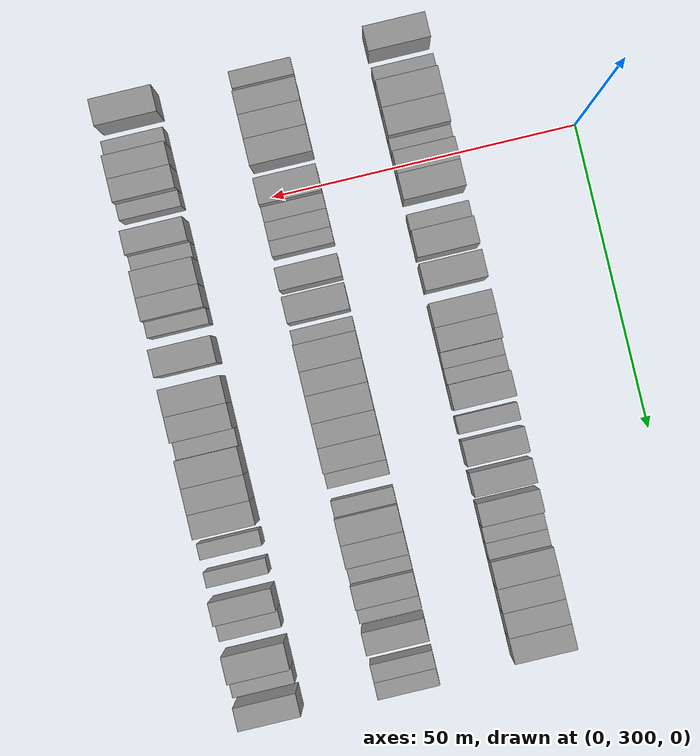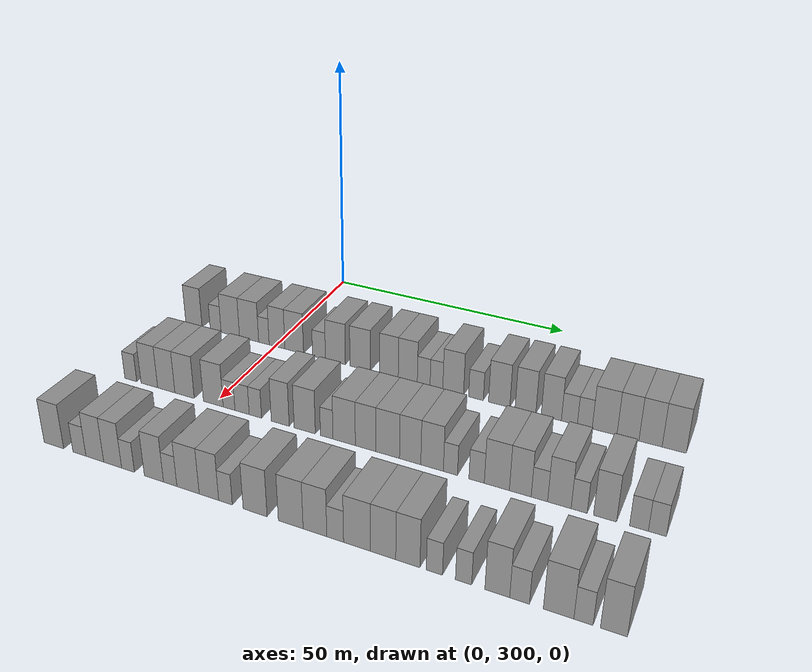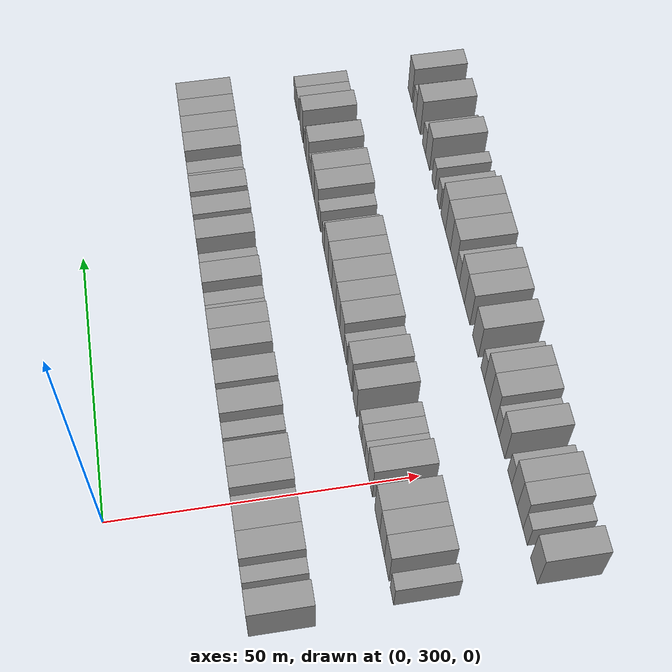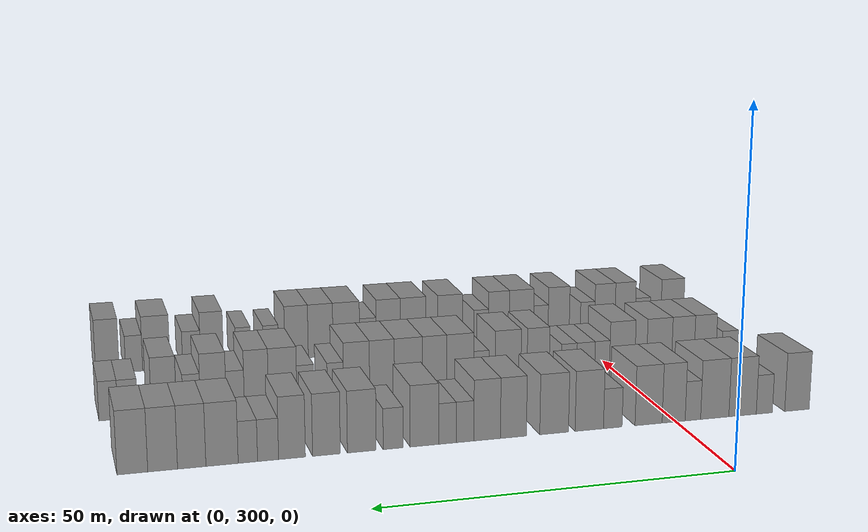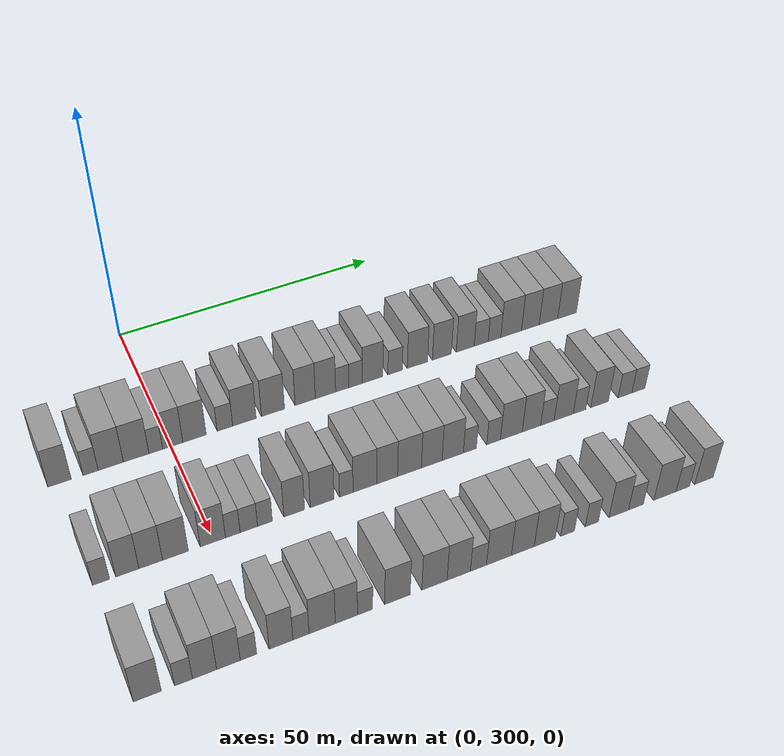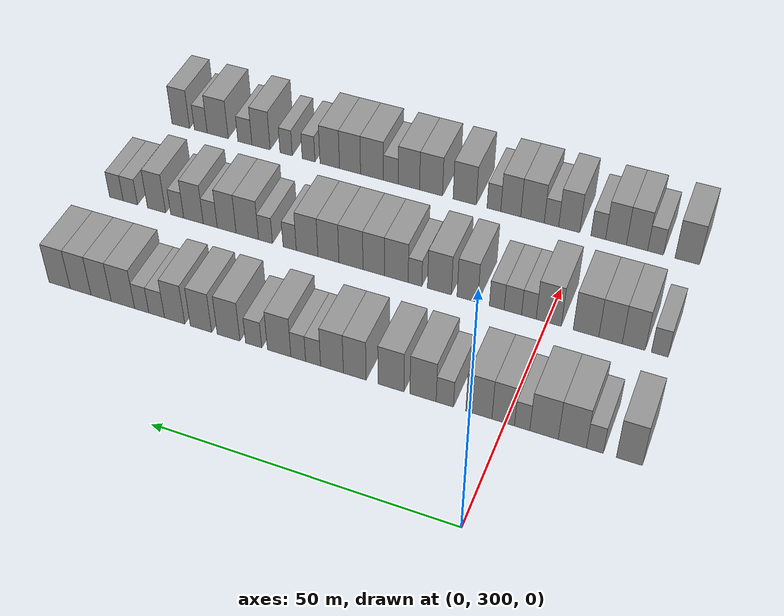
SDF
<sdf version="1.6">
 <world name="default">
  <model name="building_170">
   <static>1</static>
   <pose>25.0000 280.6387 0 0.000000 0.000000 0.000000</pose>
   <link name="link">
    <pose>0 0 4.50 0 0 0</pose>
    <collision name="collision"><geometry><box><size>10.0000 3.9963 9.0000</size></box></geometry></collision>
    <visual name="visual">
     <cast_shadows>0</cast_shadows>
     <geometry><box><size>10.0000 3.9963 9.0000</size></box></geometry>
     <material>
      <script>
       <uri>model://grey_wall/materials/scripts</uri>
       <uri>model://grey_wall/materials/textures</uri>
       <name>vrc/grey_wall</name>
      </script>
     </material>
    </visual>
   </link>
  </model>
  <model name="building_171">
   <static>1</static>
   <pose>25.0000 285.9402 0 0.000000 0.000000 0.000000</pose>
   <link name="link">
    <pose>0 0 3.00 0 0 0</pose>
    <collision name="collision"><geometry><box><size>10.0000 2.6067 6.0000</size></box></geometry></collision>
    <visual name="visual">
     <cast_shadows>0</cast_shadows>
     <geometry><box><size>10.0000 2.6067 6.0000</size></box></geometry>
     <material>
      <script>
       <uri>model://grey_wall/materials/scripts</uri>
       <uri>model://grey_wall/materials/textures</uri>
       <name>vrc/grey_wall</name>
      </script>
     </material>
    </visual>
   </link>
  </model>
  <model name="building_172">
   <static>1</static>
   <pose>25.0000 289.4367 0 0.000000 0.000000 0.000000</pose>
   <link name="link">
    <pose>0 0 4.50 0 0 0</pose>
    <collision name="collision"><geometry><box><size>10.0000 4.3864 9.0000</size></box></geometry></collision>
    <visual name="visual">
     <cast_shadows>0</cast_shadows>
     <geometry><box><size>10.0000 4.3864 9.0000</size></box></geometry>
     <material>
      <script>
       <uri>model://grey_wall/materials/scripts</uri>
       <uri>model://grey_wall/materials/textures</uri>
       <name>vrc/grey_wall</name>
      </script>
     </material>
    </visual>
   </link>
  </model>
  <model name="building_173">
   <static>1</static>
   <pose>25.0000 293.8768 0 0.000000 0.000000 0.000000</pose>
   <link name="link">
    <pose>0 0 4.50 0 0 0</pose>
    <collision name="collision"><geometry><box><size>10.0000 4.4937 9.0000</size></box></geometry></collision>
    <visual name="visual">
     <cast_shadows>0</cast_shadows>
     <geometry><box><size>10.0000 4.4937 9.0000</size></box></geometry>
     <material>
      <script>
       <uri>model://grey_wall/materials/scripts</uri>
       <uri>model://grey_wall/materials/textures</uri>
       <name>vrc/grey_wall</name>
      </script>
     </material>
    </visual>
   </link>
  </model>
  <model name="building_174">
   <static>1</static>
   <pose>25.0000 297.3408 0 0.000000 0.000000 0.000000</pose>
   <link name="link">
    <pose>0 0 3.00 0 0 0</pose>
    <collision name="collision"><geometry><box><size>10.0000 2.4344 6.0000</size></box></geometry></collision>
    <visual name="visual">
     <cast_shadows>0</cast_shadows>
     <geometry><box><size>10.0000 2.4344 6.0000</size></box></geometry>
     <material>
      <script>
       <uri>model://grey_wall/materials/scripts</uri>
       <uri>model://grey_wall/materials/textures</uri>
       <name>vrc/grey_wall</name>
      </script>
     </material>
    </visual>
   </link>
  </model>
  <model name="building_175">
   <static>1</static>
   <pose>25.0000 300.3612 0 0.000000 0.000000 0.000000</pose>
   <link name="link">
    <pose>0 0 4.50 0 0 0</pose>
    <collision name="collision"><geometry><box><size>10.0000 3.6065 9.0000</size></box></geometry></collision>
    <visual name="visual">
     <cast_shadows>0</cast_shadows>
     <geometry><box><size>10.0000 3.6065 9.0000</size></box></geometry>
     <material>
      <script>
       <uri>model://grey_wall/materials/scripts</uri>
       <uri>model://grey_wall/materials/textures</uri>
       <name>vrc/grey_wall</name>
      </script>
     </material>
    </visual>
   </link>
  </model>
  <model name="building_176">
   <static>1</static>
   <pose>25.0000 304.2720 0 0.000000 0.000000 0.000000</pose>
   <link name="link">
    <pose>0 0 4.50 0 0 0</pose>
    <collision name="collision"><geometry><box><size>10.0000 4.2150 9.0000</size></box></geometry></collision>
    <visual name="visual">
     <cast_shadows>0</cast_shadows>
     <geometry><box><size>10.0000 4.2150 9.0000</size></box></geometry>
     <material>
      <script>
       <uri>model://grey_wall/materials/scripts</uri>
       <uri>model://grey_wall/materials/textures</uri>
       <name>vrc/grey_wall</name>
      </script>
     </material>
    </visual>
   </link>
  </model>
  <model name="building_177">
   <static>1</static>
   <pose>25.0000 309.8075 0 0.000000 0.000000 0.000000</pose>
   <link name="link">
    <pose>0 0 3.00 0 0 0</pose>
    <collision name="collision"><geometry><box><size>10.0000 2.8558 6.0000</size></box></geometry></collision>
    <visual name="visual">
     <cast_shadows>0</cast_shadows>
     <geometry><box><size>10.0000 2.8558 6.0000</size></box></geometry>
     <material>
      <script>
       <uri>model://grey_wall/materials/scripts</uri>
       <uri>model://grey_wall/materials/textures</uri>
       <name>vrc/grey_wall</name>
      </script>
     </material>
    </visual>
   </link>
  </model>
  <model name="building_178">
   <static>1</static>
   <pose>25.0000 313.3999 0 0.000000 0.000000 0.000000</pose>
   <link name="link">
    <pose>0 0 4.50 0 0 0</pose>
    <collision name="collision"><geometry><box><size>10.0000 4.3290 9.0000</size></box></geometry></collision>
    <visual name="visual">
     <cast_shadows>0</cast_shadows>
     <geometry><box><size>10.0000 4.3290 9.0000</size></box></geometry>
     <material>
      <script>
       <uri>model://grey_wall/materials/scripts</uri>
       <uri>model://grey_wall/materials/textures</uri>
       <name>vrc/grey_wall</name>
      </script>
     </material>
    </visual>
   </link>
  </model>
  <model name="building_179">
   <static>1</static>
   <pose>25.0000 318.7264 0 0.000000 0.000000 0.000000</pose>
   <link name="link">
    <pose>0 0 4.50 0 0 0</pose>
    <collision name="collision"><geometry><box><size>10.0000 4.3240 9.0000</size></box></geometry></collision>
    <visual name="visual">
     <cast_shadows>0</cast_shadows>
     <geometry><box><size>10.0000 4.3240 9.0000</size></box></geometry>
     <material>
      <script>
       <uri>model://grey_wall/materials/scripts</uri>
       <uri>model://grey_wall/materials/textures</uri>
       <name>vrc/grey_wall</name>
      </script>
     </material>
    </visual>
   </link>
  </model>
  <model name="building_180">
   <static>1</static>
   <pose>25.0000 324.8200 0 0.000000 0.000000 0.000000</pose>
   <link name="link">
    <pose>0 0 4.50 0 0 0</pose>
    <collision name="collision"><geometry><box><size>10.0000 3.8633 9.0000</size></box></geometry></collision>
    <visual name="visual">
     <cast_shadows>0</cast_shadows>
     <geometry><box><size>10.0000 3.8633 9.0000</size></box></geometry>
     <material>
      <script>
       <uri>model://grey_wall/materials/scripts</uri>
       <uri>model://grey_wall/materials/textures</uri>
       <name>vrc/grey_wall</name>
      </script>
     </material>
    </visual>
   </link>
  </model>
  <model name="building_181">
   <static>1</static>
   <pose>25.0000 328.7062 0 0.000000 0.000000 0.000000</pose>
   <link name="link">
    <pose>0 0 4.50 0 0 0</pose>
    <collision name="collision"><geometry><box><size>10.0000 3.9090 9.0000</size></box></geometry></collision>
    <visual name="visual">
     <cast_shadows>0</cast_shadows>
     <geometry><box><size>10.0000 3.9090 9.0000</size></box></geometry>
     <material>
      <script>
       <uri>model://grey_wall/materials/scripts</uri>
       <uri>model://grey_wall/materials/textures</uri>
       <name>vrc/grey_wall</name>
      </script>
     </material>
    </visual>
   </link>
  </model>
  <model name="building_182">
   <static>1</static>
   <pose>25.0000 331.9572 0 0.000000 0.000000 0.000000</pose>
   <link name="link">
    <pose>0 0 3.00 0 0 0</pose>
    <collision name="collision"><geometry><box><size>10.0000 2.5931 6.0000</size></box></geometry></collision>
    <visual name="visual">
     <cast_shadows>0</cast_shadows>
     <geometry><box><size>10.0000 2.5931 6.0000</size></box></geometry>
     <material>
      <script>
       <uri>model://grey_wall/materials/scripts</uri>
       <uri>model://grey_wall/materials/textures</uri>
       <name>vrc/grey_wall</name>
      </script>
     </material>
    </visual>
   </link>
  </model>
  <model name="building_183">
   <static>1</static>
   <pose>25.0000 334.5314 0 0.000000 0.000000 0.000000</pose>
   <link name="link">
    <pose>0 0 3.00 0 0 0</pose>
    <collision name="collision"><geometry><box><size>10.0000 2.5552 6.0000</size></box></geometry></collision>
    <visual name="visual">
     <cast_shadows>0</cast_shadows>
     <geometry><box><size>10.0000 2.5552 6.0000</size></box></geometry>
     <material>
      <script>
       <uri>model://grey_wall/materials/scripts</uri>
       <uri>model://grey_wall/materials/textures</uri>
       <name>vrc/grey_wall</name>
      </script>
     </material>
    </visual>
   </link>
  </model>
  <model name="building_184">
   <static>1</static>
   <pose>25.0000 337.8627 0 0.000000 0.000000 0.000000</pose>
   <link name="link">
    <pose>0 0 4.50 0 0 0</pose>
    <collision name="collision"><geometry><box><size>10.0000 4.1073 9.0000</size></box></geometry></collision>
    <visual name="visual">
     <cast_shadows>0</cast_shadows>
     <geometry><box><size>10.0000 4.1073 9.0000</size></box></geometry>
     <material>
      <script>
       <uri>model://grey_wall/materials/scripts</uri>
       <uri>model://grey_wall/materials/textures</uri>
       <name>vrc/grey_wall</name>
      </script>
     </material>
    </visual>
   </link>
  </model>
  <model name="building_185">
   <static>1</static>
   <pose>25.0000 342.3485 0 0.000000 0.000000 0.000000</pose>
   <link name="link">
    <pose>0 0 3.00 0 0 0</pose>
    <collision name="collision"><geometry><box><size>10.0000 2.8642 6.0000</size></box></geometry></collision>
    <visual name="visual">
     <cast_shadows>0</cast_shadows>
     <geometry><box><size>10.0000 2.8642 6.0000</size></box></geometry>
     <material>
      <script>
       <uri>model://grey_wall/materials/scripts</uri>
       <uri>model://grey_wall/materials/textures</uri>
       <name>vrc/grey_wall</name>
      </script>
     </material>
    </visual>
   </link>
  </model>
  <model name="building_186">
   <static>1</static>
   <pose>25.0000 346.8146 0 0.000000 0.000000 0.000000</pose>
   <link name="link">
    <pose>0 0 4.50 0 0 0</pose>
    <collision name="collision"><geometry><box><size>10.0000 4.0682 9.0000</size></box></geometry></collision>
    <visual name="visual">
     <cast_shadows>0</cast_shadows>
     <geometry><box><size>10.0000 4.0682 9.0000</size></box></geometry>
     <material>
      <script>
       <uri>model://grey_wall/materials/scripts</uri>
       <uri>model://grey_wall/materials/textures</uri>
       <name>vrc/grey_wall</name>
      </script>
     </material>
    </visual>
   </link>
  </model>
  <model name="building_187">
   <static>1</static>
   <pose>25.0000 351.7886 0 0.000000 0.000000 0.000000</pose>
   <link name="link">
    <pose>0 0 4.50 0 0 0</pose>
    <collision name="collision"><geometry><box><size>10.0000 3.8797 9.0000</size></box></geometry></collision>
    <visual name="visual">
     <cast_shadows>0</cast_shadows>
     <geometry><box><size>10.0000 3.8797 9.0000</size></box></geometry>
     <material>
      <script>
       <uri>model://grey_wall/materials/scripts</uri>
       <uri>model://grey_wall/materials/textures</uri>
       <name>vrc/grey_wall</name>
      </script>
     </material>
    </visual>
   </link>
  </model>
  <model name="building_188">
   <static>1</static>
   <pose>25.0000 356.5841 0 0.000000 0.000000 0.000000</pose>
   <link name="link">
    <pose>0 0 4.50 0 0 0</pose>
    <collision name="collision"><geometry><box><size>10.0000 3.7113 9.0000</size></box></geometry></collision>
    <visual name="visual">
     <cast_shadows>0</cast_shadows>
     <geometry><box><size>10.0000 3.7113 9.0000</size></box></geometry>
     <material>
      <script>
       <uri>model://grey_wall/materials/scripts</uri>
       <uri>model://grey_wall/materials/textures</uri>
       <name>vrc/grey_wall</name>
      </script>
     </material>
    </visual>
   </link>
  </model>
  <model name="building_189">
   <static>1</static>
   <pose>25.0000 359.8852 0 0.000000 0.000000 0.000000</pose>
   <link name="link">
    <pose>0 0 3.00 0 0 0</pose>
    <collision name="collision"><geometry><box><size>10.0000 2.8909 6.0000</size></box></geometry></collision>
    <visual name="visual">
     <cast_shadows>0</cast_shadows>
     <geometry><box><size>10.0000 2.8909 6.0000</size></box></geometry>
     <material>
      <script>
       <uri>model://grey_wall/materials/scripts</uri>
       <uri>model://grey_wall/materials/textures</uri>
       <name>vrc/grey_wall</name>
      </script>
     </material>
    </visual>
   </link>
  </model>
  <model name="building_190">
   <static>1</static>
   <pose>25.0000 362.6562 0 0.000000 0.000000 0.000000</pose>
   <link name="link">
    <pose>0 0 3.00 0 0 0</pose>
    <collision name="collision"><geometry><box><size>10.0000 2.6512 6.0000</size></box></geometry></collision>
    <visual name="visual">
     <cast_shadows>0</cast_shadows>
     <geometry><box><size>10.0000 2.6512 6.0000</size></box></geometry>
     <material>
      <script>
       <uri>model://grey_wall/materials/scripts</uri>
       <uri>model://grey_wall/materials/textures</uri>
       <name>vrc/grey_wall</name>
      </script>
     </material>
    </visual>
   </link>
  </model>
  <model name="building_191">
   <static>1</static>
   <pose>25.0000 366.1679 0 0.000000 0.000000 0.000000</pose>
   <link name="link">
    <pose>0 0 4.50 0 0 0</pose>
    <collision name="collision"><geometry><box><size>10.0000 4.3721 9.0000</size></box></geometry></collision>
    <visual name="visual">
     <cast_shadows>0</cast_shadows>
     <geometry><box><size>10.0000 4.3721 9.0000</size></box></geometry>
     <material>
      <script>
       <uri>model://grey_wall/materials/scripts</uri>
       <uri>model://grey_wall/materials/textures</uri>
       <name>vrc/grey_wall</name>
      </script>
     </material>
    </visual>
   </link>
  </model>
  <model name="building_192">
   <static>1</static>
   <pose>25.0000 370.2588 0 0.000000 0.000000 0.000000</pose>
   <link name="link">
    <pose>0 0 4.50 0 0 0</pose>
    <collision name="collision"><geometry><box><size>10.0000 3.8097 9.0000</size></box></geometry></collision>
    <visual name="visual">
     <cast_shadows>0</cast_shadows>
     <geometry><box><size>10.0000 3.8097 9.0000</size></box></geometry>
     <material>
      <script>
       <uri>model://grey_wall/materials/scripts</uri>
       <uri>model://grey_wall/materials/textures</uri>
       <name>vrc/grey_wall</name>
      </script>
     </material>
    </visual>
   </link>
  </model>
  <model name="building_193">
   <static>1</static>
   <pose>25.0000 374.1449 0 0.000000 0.000000 0.000000</pose>
   <link name="link">
    <pose>0 0 4.50 0 0 0</pose>
    <collision name="collision"><geometry><box><size>10.0000 3.9625 9.0000</size></box></geometry></collision>
    <visual name="visual">
     <cast_shadows>0</cast_shadows>
     <geometry><box><size>10.0000 3.9625 9.0000</size></box></geometry>
     <material>
      <script>
       <uri>model://grey_wall/materials/scripts</uri>
       <uri>model://grey_wall/materials/textures</uri>
       <name>vrc/grey_wall</name>
      </script>
     </material>
    </visual>
   </link>
  </model>
  <model name="building_194">
   <static>1</static>
   <pose>25.0000 378.1609 0 0.000000 0.000000 0.000000</pose>
   <link name="link">
    <pose>0 0 4.50 0 0 0</pose>
    <collision name="collision"><geometry><box><size>10.0000 4.0697 9.0000</size></box></geometry></collision>
    <visual name="visual">
     <cast_shadows>0</cast_shadows>
     <geometry><box><size>10.0000 4.0697 9.0000</size></box></geometry>
     <material>
      <script>
       <uri>model://grey_wall/materials/scripts</uri>
       <uri>model://grey_wall/materials/textures</uri>
       <name>vrc/grey_wall</name>
      </script>
     </material>
    </visual>
   </link>
  </model>
  <model name="building_354">
   <static>1</static>
   <pose>47.0000 281.3577 0 0.000000 0.000000 0.000000</pose>
   <link name="link">
    <pose>0 0 3.00 0 0 0</pose>
    <collision name="collision"><geometry><box><size>10.0000 2.7425 6.0000</size></box></geometry></collision>
    <visual name="visual">
     <cast_shadows>0</cast_shadows>
     <geometry><box><size>10.0000 2.7425 6.0000</size></box></geometry>
     <material>
      <script>
       <uri>model://grey_wall/materials/scripts</uri>
       <uri>model://grey_wall/materials/textures</uri>
       <name>vrc/grey_wall</name>
      </script>
     </material>
    </visual>
   </link>
  </model>
  <model name="building_355">
   <static>1</static>
   <pose>47.0000 285.6176 0 0.000000 0.000000 0.000000</pose>
   <link name="link">
    <pose>0 0 4.50 0 0 0</pose>
    <collision name="collision"><geometry><box><size>10.0000 3.7772 9.0000</size></box></geometry></collision>
    <visual name="visual">
     <cast_shadows>0</cast_shadows>
     <geometry><box><size>10.0000 3.7772 9.0000</size></box></geometry>
     <material>
      <script>
       <uri>model://grey_wall/materials/scripts</uri>
       <uri>model://grey_wall/materials/textures</uri>
       <name>vrc/grey_wall</name>
      </script>
     </material>
    </visual>
   </link>
  </model>
  <model name="building_356">
   <static>1</static>
   <pose>47.0000 289.4388 0 0.000000 0.000000 0.000000</pose>
   <link name="link">
    <pose>0 0 4.50 0 0 0</pose>
    <collision name="collision"><geometry><box><size>10.0000 3.8653 9.0000</size></box></geometry></collision>
    <visual name="visual">
     <cast_shadows>0</cast_shadows>
     <geometry><box><size>10.0000 3.8653 9.0000</size></box></geometry>
     <material>
      <script>
       <uri>model://grey_wall/materials/scripts</uri>
       <uri>model://grey_wall/materials/textures</uri>
       <name>vrc/grey_wall</name>
      </script>
     </material>
    </visual>
   </link>
  </model>
  <model name="building_357">
   <static>1</static>
   <pose>47.0000 293.5072 0 0.000000 0.000000 0.000000</pose>
   <link name="link">
    <pose>0 0 4.50 0 0 0</pose>
    <collision name="collision"><geometry><box><size>10.0000 4.2714 9.0000</size></box></geometry></collision>
    <visual name="visual">
     <cast_shadows>0</cast_shadows>
     <geometry><box><size>10.0000 4.2714 9.0000</size></box></geometry>
     <material>
      <script>
       <uri>model://grey_wall/materials/scripts</uri>
       <uri>model://grey_wall/materials/textures</uri>
       <name>vrc/grey_wall</name>
      </script>
     </material>
    </visual>
   </link>
  </model>
  <model name="building_358">
   <static>1</static>
   <pose>47.0000 299.7740 0 0.000000 0.000000 0.000000</pose>
   <link name="link">
    <pose>0 0 4.50 0 0 0</pose>
    <collision name="collision"><geometry><box><size>10.0000 4.2620 9.0000</size></box></geometry></collision>
    <visual name="visual">
     <cast_shadows>0</cast_shadows>
     <geometry><box><size>10.0000 4.2620 9.0000</size></box></geometry>
     <material>
      <script>
       <uri>model://grey_wall/materials/scripts</uri>
       <uri>model://grey_wall/materials/textures</uri>
       <name>vrc/grey_wall</name>
      </script>
     </material>
    </visual>
   </link>
  </model>
  <model name="building_359">
   <static>1</static>
   <pose>47.0000 303.1532 0 0.000000 0.000000 0.000000</pose>
   <link name="link">
    <pose>0 0 3.00 0 0 0</pose>
    <collision name="collision"><geometry><box><size>10.0000 2.4964 6.0000</size></box></geometry></collision>
    <visual name="visual">
     <cast_shadows>0</cast_shadows>
     <geometry><box><size>10.0000 2.4964 6.0000</size></box></geometry>
     <material>
      <script>
       <uri>model://grey_wall/materials/scripts</uri>
       <uri>model://grey_wall/materials/textures</uri>
       <name>vrc/grey_wall</name>
      </script>
     </material>
    </visual>
   </link>
  </model>
  <model name="building_360">
   <static>1</static>
   <pose>47.0000 305.8969 0 0.000000 0.000000 0.000000</pose>
   <link name="link">
    <pose>0 0 3.00 0 0 0</pose>
    <collision name="collision"><geometry><box><size>10.0000 2.9911 6.0000</size></box></geometry></collision>
    <visual name="visual">
     <cast_shadows>0</cast_shadows>
     <geometry><box><size>10.0000 2.9911 6.0000</size></box></geometry>
     <material>
      <script>
       <uri>model://grey_wall/materials/scripts</uri>
       <uri>model://grey_wall/materials/textures</uri>
       <name>vrc/grey_wall</name>
      </script>
     </material>
    </visual>
   </link>
  </model>
  <model name="building_361">
   <static>1</static>
   <pose>47.0000 308.6741 0 0.000000 0.000000 0.000000</pose>
   <link name="link">
    <pose>0 0 3.00 0 0 0</pose>
    <collision name="collision"><geometry><box><size>10.0000 2.5633 6.0000</size></box></geometry></collision>
    <visual name="visual">
     <cast_shadows>0</cast_shadows>
     <geometry><box><size>10.0000 2.5633 6.0000</size></box></geometry>
     <material>
      <script>
       <uri>model://grey_wall/materials/scripts</uri>
       <uri>model://grey_wall/materials/textures</uri>
       <name>vrc/grey_wall</name>
      </script>
     </material>
    </visual>
   </link>
  </model>
  <model name="building_362">
   <static>1</static>
   <pose>47.0000 313.7759 0 0.000000 0.000000 0.000000</pose>
   <link name="link">
    <pose>0 0 4.50 0 0 0</pose>
    <collision name="collision"><geometry><box><size>10.0000 3.6403 9.0000</size></box></geometry></collision>
    <visual name="visual">
     <cast_shadows>0</cast_shadows>
     <geometry><box><size>10.0000 3.6403 9.0000</size></box></geometry>
     <material>
      <script>
       <uri>model://grey_wall/materials/scripts</uri>
       <uri>model://grey_wall/materials/textures</uri>
       <name>vrc/grey_wall</name>
      </script>
     </material>
    </visual>
   </link>
  </model>
  <model name="building_363">
   <static>1</static>
   <pose>47.0000 318.7058 0 0.000000 0.000000 0.000000</pose>
   <link name="link">
    <pose>0 0 4.50 0 0 0</pose>
    <collision name="collision"><geometry><box><size>10.0000 4.2194 9.0000</size></box></geometry></collision>
    <visual name="visual">
     <cast_shadows>0</cast_shadows>
     <geometry><box><size>10.0000 4.2194 9.0000</size></box></geometry>
     <material>
      <script>
       <uri>model://grey_wall/materials/scripts</uri>
       <uri>model://grey_wall/materials/textures</uri>
       <name>vrc/grey_wall</name>
      </script>
     </material>
    </visual>
   </link>
  </model>
  <model name="building_364">
   <static>1</static>
   <pose>47.0000 323.0400 0 0.000000 0.000000 0.000000</pose>
   <link name="link">
    <pose>0 0 3.00 0 0 0</pose>
    <collision name="collision"><geometry><box><size>10.0000 2.4490 6.0000</size></box></geometry></collision>
    <visual name="visual">
     <cast_shadows>0</cast_shadows>
     <geometry><box><size>10.0000 2.4490 6.0000</size></box></geometry>
     <material>
      <script>
       <uri>model://grey_wall/materials/scripts</uri>
       <uri>model://grey_wall/materials/textures</uri>
       <name>vrc/grey_wall</name>
      </script>
     </material>
    </visual>
   </link>
  </model>
  <model name="building_365">
   <static>1</static>
   <pose>47.0000 326.4119 0 0.000000 0.000000 0.000000</pose>
   <link name="link">
    <pose>0 0 4.50 0 0 0</pose>
    <collision name="collision"><geometry><box><size>10.0000 4.2950 9.0000</size></box></geometry></collision>
    <visual name="visual">
     <cast_shadows>0</cast_shadows>
     <geometry><box><size>10.0000 4.2950 9.0000</size></box></geometry>
     <material>
      <script>
       <uri>model://grey_wall/materials/scripts</uri>
       <uri>model://grey_wall/materials/textures</uri>
       <name>vrc/grey_wall</name>
      </script>
     </material>
    </visual>
   </link>
  </model>
  <model name="building_366">
   <static>1</static>
   <pose>47.0000 330.4872 0 0.000000 0.000000 0.000000</pose>
   <link name="link">
    <pose>0 0 4.50 0 0 0</pose>
    <collision name="collision"><geometry><box><size>10.0000 3.8557 9.0000</size></box></geometry></collision>
    <visual name="visual">
     <cast_shadows>0</cast_shadows>
     <geometry><box><size>10.0000 3.8557 9.0000</size></box></geometry>
     <material>
      <script>
       <uri>model://grey_wall/materials/scripts</uri>
       <uri>model://grey_wall/materials/textures</uri>
       <name>vrc/grey_wall</name>
      </script>
     </material>
    </visual>
   </link>
  </model>
  <model name="building_367">
   <static>1</static>
   <pose>47.0000 334.6241 0 0.000000 0.000000 0.000000</pose>
   <link name="link">
    <pose>0 0 4.50 0 0 0</pose>
    <collision name="collision"><geometry><box><size>10.0000 4.4180 9.0000</size></box></geometry></collision>
    <visual name="visual">
     <cast_shadows>0</cast_shadows>
     <geometry><box><size>10.0000 4.4180 9.0000</size></box></geometry>
     <material>
      <script>
       <uri>model://grey_wall/materials/scripts</uri>
       <uri>model://grey_wall/materials/textures</uri>
       <name>vrc/grey_wall</name>
      </script>
     </material>
    </visual>
   </link>
  </model>
  <model name="building_368">
   <static>1</static>
   <pose>47.0000 338.7749 0 0.000000 0.000000 0.000000</pose>
   <link name="link">
    <pose>0 0 4.50 0 0 0</pose>
    <collision name="collision"><geometry><box><size>10.0000 3.8836 9.0000</size></box></geometry></collision>
    <visual name="visual">
     <cast_shadows>0</cast_shadows>
     <geometry><box><size>10.0000 3.8836 9.0000</size></box></geometry>
     <material>
      <script>
       <uri>model://grey_wall/materials/scripts</uri>
       <uri>model://grey_wall/materials/textures</uri>
       <name>vrc/grey_wall</name>
      </script>
     </material>
    </visual>
   </link>
  </model>
  <model name="building_369">
   <static>1</static>
   <pose>47.0000 342.7407 0 0.000000 0.000000 0.000000</pose>
   <link name="link">
    <pose>0 0 4.50 0 0 0</pose>
    <collision name="collision"><geometry><box><size>10.0000 4.0480 9.0000</size></box></geometry></collision>
    <visual name="visual">
     <cast_shadows>0</cast_shadows>
     <geometry><box><size>10.0000 4.0480 9.0000</size></box></geometry>
     <material>
      <script>
       <uri>model://grey_wall/materials/scripts</uri>
       <uri>model://grey_wall/materials/textures</uri>
       <name>vrc/grey_wall</name>
      </script>
     </material>
    </visual>
   </link>
  </model>
  <model name="building_370">
   <static>1</static>
   <pose>47.0000 346.0104 0 0.000000 0.000000 0.000000</pose>
   <link name="link">
    <pose>0 0 3.00 0 0 0</pose>
    <collision name="collision"><geometry><box><size>10.0000 2.4915 6.0000</size></box></geometry></collision>
    <visual name="visual">
     <cast_shadows>0</cast_shadows>
     <geometry><box><size>10.0000 2.4915 6.0000</size></box></geometry>
     <material>
      <script>
       <uri>model://grey_wall/materials/scripts</uri>
       <uri>model://grey_wall/materials/textures</uri>
       <name>vrc/grey_wall</name>
      </script>
     </material>
    </visual>
   </link>
  </model>
  <model name="building_371">
   <static>1</static>
   <pose>47.0000 350.5858 0 0.000000 0.000000 0.000000</pose>
   <link name="link">
    <pose>0 0 3.00 0 0 0</pose>
    <collision name="collision"><geometry><box><size>10.0000 2.6592 6.0000</size></box></geometry></collision>
    <visual name="visual">
     <cast_shadows>0</cast_shadows>
     <geometry><box><size>10.0000 2.6592 6.0000</size></box></geometry>
     <material>
      <script>
       <uri>model://grey_wall/materials/scripts</uri>
       <uri>model://grey_wall/materials/textures</uri>
       <name>vrc/grey_wall</name>
      </script>
     </material>
    </visual>
   </link>
  </model>
  <model name="building_372">
   <static>1</static>
   <pose>47.0000 354.0546 0 0.000000 0.000000 0.000000</pose>
   <link name="link">
    <pose>0 0 4.50 0 0 0</pose>
    <collision name="collision"><geometry><box><size>10.0000 4.2785 9.0000</size></box></geometry></collision>
    <visual name="visual">
     <cast_shadows>0</cast_shadows>
     <geometry><box><size>10.0000 4.2785 9.0000</size></box></geometry>
     <material>
      <script>
       <uri>model://grey_wall/materials/scripts</uri>
       <uri>model://grey_wall/materials/textures</uri>
       <name>vrc/grey_wall</name>
      </script>
     </material>
    </visual>
   </link>
  </model>
  <model name="building_373">
   <static>1</static>
   <pose>47.0000 358.0179 0 0.000000 0.000000 0.000000</pose>
   <link name="link">
    <pose>0 0 4.50 0 0 0</pose>
    <collision name="collision"><geometry><box><size>10.0000 3.6482 9.0000</size></box></geometry></collision>
    <visual name="visual">
     <cast_shadows>0</cast_shadows>
     <geometry><box><size>10.0000 3.6482 9.0000</size></box></geometry>
     <material>
      <script>
       <uri>model://grey_wall/materials/scripts</uri>
       <uri>model://grey_wall/materials/textures</uri>
       <name>vrc/grey_wall</name>
      </script>
     </material>
    </visual>
   </link>
  </model>
  <model name="building_374">
   <static>1</static>
   <pose>47.0000 361.1964 0 0.000000 0.000000 0.000000</pose>
   <link name="link">
    <pose>0 0 3.00 0 0 0</pose>
    <collision name="collision"><geometry><box><size>10.0000 2.7087 6.0000</size></box></geometry></collision>
    <visual name="visual">
     <cast_shadows>0</cast_shadows>
     <geometry><box><size>10.0000 2.7087 6.0000</size></box></geometry>
     <material>
      <script>
       <uri>model://grey_wall/materials/scripts</uri>
       <uri>model://grey_wall/materials/textures</uri>
       <name>vrc/grey_wall</name>
      </script>
     </material>
    </visual>
   </link>
  </model>
  <model name="building_375">
   <static>1</static>
   <pose>47.0000 364.4617 0 0.000000 0.000000 0.000000</pose>
   <link name="link">
    <pose>0 0 4.50 0 0 0</pose>
    <collision name="collision"><geometry><box><size>10.0000 3.8219 9.0000</size></box></geometry></collision>
    <visual name="visual">
     <cast_shadows>0</cast_shadows>
     <geometry><box><size>10.0000 3.8219 9.0000</size></box></geometry>
     <material>
      <script>
       <uri>model://grey_wall/materials/scripts</uri>
       <uri>model://grey_wall/materials/textures</uri>
       <name>vrc/grey_wall</name>
      </script>
     </material>
    </visual>
   </link>
  </model>
  <model name="building_376">
   <static>1</static>
   <pose>47.0000 367.6561 0 0.000000 0.000000 0.000000</pose>
   <link name="link">
    <pose>0 0 3.00 0 0 0</pose>
    <collision name="collision"><geometry><box><size>10.0000 2.5669 6.0000</size></box></geometry></collision>
    <visual name="visual">
     <cast_shadows>0</cast_shadows>
     <geometry><box><size>10.0000 2.5669 6.0000</size></box></geometry>
     <material>
      <script>
       <uri>model://grey_wall/materials/scripts</uri>
       <uri>model://grey_wall/materials/textures</uri>
       <name>vrc/grey_wall</name>
      </script>
     </material>
    </visual>
   </link>
  </model>
  <model name="building_377">
   <static>1</static>
   <pose>47.0000 371.7515 0 0.000000 0.000000 0.000000</pose>
   <link name="link">
    <pose>0 0 4.50 0 0 0</pose>
    <collision name="collision"><geometry><box><size>10.0000 3.6238 9.0000</size></box></geometry></collision>
    <visual name="visual">
     <cast_shadows>0</cast_shadows>
     <geometry><box><size>10.0000 3.6238 9.0000</size></box></geometry>
     <material>
      <script>
       <uri>model://grey_wall/materials/scripts</uri>
       <uri>model://grey_wall/materials/textures</uri>
       <name>vrc/grey_wall</name>
      </script>
     </material>
    </visual>
   </link>
  </model>
  <model name="building_378">
   <static>1</static>
   <pose>47.0000 377.0047 0 0.000000 0.000000 0.000000</pose>
   <link name="link">
    <pose>0 0 3.00 0 0 0</pose>
    <collision name="collision"><geometry><box><size>10.0000 2.8826 6.0000</size></box></geometry></collision>
    <visual name="visual">
     <cast_shadows>0</cast_shadows>
     <geometry><box><size>10.0000 2.8826 6.0000</size></box></geometry>
     <material>
      <script>
       <uri>model://grey_wall/materials/scripts</uri>
       <uri>model://grey_wall/materials/textures</uri>
       <name>vrc/grey_wall</name>
      </script>
     </material>
    </visual>
   </link>
  </model>
  <model name="building_379">
   <static>1</static>
   <pose>47.0000 379.8093 0 0.000000 0.000000 0.000000</pose>
   <link name="link">
    <pose>0 0 3.00 0 0 0</pose>
    <collision name="collision"><geometry><box><size>10.0000 2.7267 6.0000</size></box></geometry></collision>
    <visual name="visual">
     <cast_shadows>0</cast_shadows>
     <geometry><box><size>10.0000 2.7267 6.0000</size></box></geometry>
     <material>
      <script>
       <uri>model://grey_wall/materials/scripts</uri>
       <uri>model://grey_wall/materials/textures</uri>
       <name>vrc/grey_wall</name>
      </script>
     </material>
    </visual>
   </link>
  </model>
  <model name="building_549">
   <static>1</static>
   <pose>69.0000 281.9025 0 0.000000 0.000000 0.000000</pose>
   <link name="link">
    <pose>0 0 4.50 0 0 0</pose>
    <collision name="collision"><geometry><box><size>10.0000 4.2386 9.0000</size></box></geometry></collision>
    <visual name="visual">
     <cast_shadows>0</cast_shadows>
     <geometry><box><size>10.0000 4.2386 9.0000</size></box></geometry>
     <material>
      <script>
       <uri>model://grey_wall/materials/scripts</uri>
       <uri>model://grey_wall/materials/textures</uri>
       <name>vrc/grey_wall</name>
      </script>
     </material>
    </visual>
   </link>
  </model>
  <model name="building_550">
   <static>1</static>
   <pose>69.0000 287.4011 0 0.000000 0.000000 0.000000</pose>
   <link name="link">
    <pose>0 0 3.00 0 0 0</pose>
    <collision name="collision"><geometry><box><size>10.0000 2.7585 6.0000</size></box></geometry></collision>
    <visual name="visual">
     <cast_shadows>0</cast_shadows>
     <geometry><box><size>10.0000 2.7585 6.0000</size></box></geometry>
     <material>
      <script>
       <uri>model://grey_wall/materials/scripts</uri>
       <uri>model://grey_wall/materials/textures</uri>
       <name>vrc/grey_wall</name>
      </script>
     </material>
    </visual>
   </link>
  </model>
  <model name="building_551">
   <static>1</static>
   <pose>69.0000 290.6432 0 0.000000 0.000000 0.000000</pose>
   <link name="link">
    <pose>0 0 4.50 0 0 0</pose>
    <collision name="collision"><geometry><box><size>10.0000 3.7257 9.0000</size></box></geometry></collision>
    <visual name="visual">
     <cast_shadows>0</cast_shadows>
     <geometry><box><size>10.0000 3.7257 9.0000</size></box></geometry>
     <material>
      <script>
       <uri>model://grey_wall/materials/scripts</uri>
       <uri>model://grey_wall/materials/textures</uri>
       <name>vrc/grey_wall</name>
      </script>
     </material>
    </visual>
   </link>
  </model>
  <model name="building_552">
   <static>1</static>
   <pose>69.0000 294.3589 0 0.000000 0.000000 0.000000</pose>
   <link name="link">
    <pose>0 0 4.50 0 0 0</pose>
    <collision name="collision"><geometry><box><size>10.0000 3.7056 9.0000</size></box></geometry></collision>
    <visual name="visual">
     <cast_shadows>0</cast_shadows>
     <geometry><box><size>10.0000 3.7056 9.0000</size></box></geometry>
     <material>
      <script>
       <uri>model://grey_wall/materials/scripts</uri>
       <uri>model://grey_wall/materials/textures</uri>
       <name>vrc/grey_wall</name>
      </script>
     </material>
    </visual>
   </link>
  </model>
  <model name="building_553">
   <static>1</static>
   <pose>69.0000 297.5087 0 0.000000 0.000000 0.000000</pose>
   <link name="link">
    <pose>0 0 3.00 0 0 0</pose>
    <collision name="collision"><geometry><box><size>10.0000 2.5940 6.0000</size></box></geometry></collision>
    <visual name="visual">
     <cast_shadows>0</cast_shadows>
     <geometry><box><size>10.0000 2.5940 6.0000</size></box></geometry>
     <material>
      <script>
       <uri>model://grey_wall/materials/scripts</uri>
       <uri>model://grey_wall/materials/textures</uri>
       <name>vrc/grey_wall</name>
      </script>
     </material>
    </visual>
   </link>
  </model>
  <model name="building_554">
   <static>1</static>
   <pose>69.0000 302.7096 0 0.000000 0.000000 0.000000</pose>
   <link name="link">
    <pose>0 0 4.50 0 0 0</pose>
    <collision name="collision"><geometry><box><size>10.0000 3.8078 9.0000</size></box></geometry></collision>
    <visual name="visual">
     <cast_shadows>0</cast_shadows>
     <geometry><box><size>10.0000 3.8078 9.0000</size></box></geometry>
     <material>
      <script>
       <uri>model://grey_wall/materials/scripts</uri>
       <uri>model://grey_wall/materials/textures</uri>
       <name>vrc/grey_wall</name>
      </script>
     </material>
    </visual>
   </link>
  </model>
  <model name="building_555">
   <static>1</static>
   <pose>69.0000 305.9192 0 0.000000 0.000000 0.000000</pose>
   <link name="link">
    <pose>0 0 3.00 0 0 0</pose>
    <collision name="collision"><geometry><box><size>10.0000 2.6115 6.0000</size></box></geometry></collision>
    <visual name="visual">
     <cast_shadows>0</cast_shadows>
     <geometry><box><size>10.0000 2.6115 6.0000</size></box></geometry>
     <material>
      <script>
       <uri>model://grey_wall/materials/scripts</uri>
       <uri>model://grey_wall/materials/textures</uri>
       <name>vrc/grey_wall</name>
      </script>
     </material>
    </visual>
   </link>
  </model>
  <model name="building_556">
   <static>1</static>
   <pose>69.0000 309.3774 0 0.000000 0.000000 0.000000</pose>
   <link name="link">
    <pose>0 0 4.50 0 0 0</pose>
    <collision name="collision"><geometry><box><size>10.0000 4.3049 9.0000</size></box></geometry></collision>
    <visual name="visual">
     <cast_shadows>0</cast_shadows>
     <geometry><box><size>10.0000 4.3049 9.0000</size></box></geometry>
     <material>
      <script>
       <uri>model://grey_wall/materials/scripts</uri>
       <uri>model://grey_wall/materials/textures</uri>
       <name>vrc/grey_wall</name>
      </script>
     </material>
    </visual>
   </link>
  </model>
  <model name="building_557">
   <static>1</static>
   <pose>69.0000 313.3724 0 0.000000 0.000000 0.000000</pose>
   <link name="link">
    <pose>0 0 4.50 0 0 0</pose>
    <collision name="collision"><geometry><box><size>10.0000 3.6852 9.0000</size></box></geometry></collision>
    <visual name="visual">
     <cast_shadows>0</cast_shadows>
     <geometry><box><size>10.0000 3.6852 9.0000</size></box></geometry>
     <material>
      <script>
       <uri>model://grey_wall/materials/scripts</uri>
       <uri>model://grey_wall/materials/textures</uri>
       <name>vrc/grey_wall</name>
      </script>
     </material>
    </visual>
   </link>
  </model>
  <model name="building_558">
   <static>1</static>
   <pose>69.0000 316.4869 0 0.000000 0.000000 0.000000</pose>
   <link name="link">
    <pose>0 0 3.00 0 0 0</pose>
    <collision name="collision"><geometry><box><size>10.0000 2.5439 6.0000</size></box></geometry></collision>
    <visual name="visual">
     <cast_shadows>0</cast_shadows>
     <geometry><box><size>10.0000 2.5439 6.0000</size></box></geometry>
     <material>
      <script>
       <uri>model://grey_wall/materials/scripts</uri>
       <uri>model://grey_wall/materials/textures</uri>
       <name>vrc/grey_wall</name>
      </script>
     </material>
    </visual>
   </link>
  </model>
  <model name="building_559">
   <static>1</static>
   <pose>69.0000 321.9394 0 0.000000 0.000000 0.000000</pose>
   <link name="link">
    <pose>0 0 4.50 0 0 0</pose>
    <collision name="collision"><geometry><box><size>10.0000 4.3613 9.0000</size></box></geometry></collision>
    <visual name="visual">
     <cast_shadows>0</cast_shadows>
     <geometry><box><size>10.0000 4.3613 9.0000</size></box></geometry>
     <material>
      <script>
       <uri>model://grey_wall/materials/scripts</uri>
       <uri>model://grey_wall/materials/textures</uri>
       <name>vrc/grey_wall</name>
      </script>
     </material>
    </visual>
   </link>
  </model>
  <model name="building_560">
   <static>1</static>
   <pose>69.0000 328.3080 0 0.000000 0.000000 0.000000</pose>
   <link name="link">
    <pose>0 0 4.50 0 0 0</pose>
    <collision name="collision"><geometry><box><size>10.0000 4.3758 9.0000</size></box></geometry></collision>
    <visual name="visual">
     <cast_shadows>0</cast_shadows>
     <geometry><box><size>10.0000 4.3758 9.0000</size></box></geometry>
     <material>
      <script>
       <uri>model://grey_wall/materials/scripts</uri>
       <uri>model://grey_wall/materials/textures</uri>
       <name>vrc/grey_wall</name>
      </script>
     </material>
    </visual>
   </link>
  </model>
  <model name="building_561">
   <static>1</static>
   <pose>69.0000 332.5432 0 0.000000 0.000000 0.000000</pose>
   <link name="link">
    <pose>0 0 4.50 0 0 0</pose>
    <collision name="collision"><geometry><box><size>10.0000 4.0946 9.0000</size></box></geometry></collision>
    <visual name="visual">
     <cast_shadows>0</cast_shadows>
     <geometry><box><size>10.0000 4.0946 9.0000</size></box></geometry>
     <material>
      <script>
       <uri>model://grey_wall/materials/scripts</uri>
       <uri>model://grey_wall/materials/textures</uri>
       <name>vrc/grey_wall</name>
      </script>
     </material>
    </visual>
   </link>
  </model>
  <model name="building_562">
   <static>1</static>
   <pose>69.0000 336.0104 0 0.000000 0.000000 0.000000</pose>
   <link name="link">
    <pose>0 0 3.00 0 0 0</pose>
    <collision name="collision"><geometry><box><size>10.0000 2.8398 6.0000</size></box></geometry></collision>
    <visual name="visual">
     <cast_shadows>0</cast_shadows>
     <geometry><box><size>10.0000 2.8398 6.0000</size></box></geometry>
     <material>
      <script>
       <uri>model://grey_wall/materials/scripts</uri>
       <uri>model://grey_wall/materials/textures</uri>
       <name>vrc/grey_wall</name>
      </script>
     </material>
    </visual>
   </link>
  </model>
  <model name="building_563">
   <static>1</static>
   <pose>69.0000 339.6680 0 0.000000 0.000000 0.000000</pose>
   <link name="link">
    <pose>0 0 4.50 0 0 0</pose>
    <collision name="collision"><geometry><box><size>10.0000 4.4752 9.0000</size></box></geometry></collision>
    <visual name="visual">
     <cast_shadows>0</cast_shadows>
     <geometry><box><size>10.0000 4.4752 9.0000</size></box></geometry>
     <material>
      <script>
       <uri>model://grey_wall/materials/scripts</uri>
       <uri>model://grey_wall/materials/textures</uri>
       <name>vrc/grey_wall</name>
      </script>
     </material>
    </visual>
   </link>
  </model>
  <model name="building_564">
   <static>1</static>
   <pose>69.0000 343.9779 0 0.000000 0.000000 0.000000</pose>
   <link name="link">
    <pose>0 0 4.50 0 0 0</pose>
    <collision name="collision"><geometry><box><size>10.0000 4.1446 9.0000</size></box></geometry></collision>
    <visual name="visual">
     <cast_shadows>0</cast_shadows>
     <geometry><box><size>10.0000 4.1446 9.0000</size></box></geometry>
     <material>
      <script>
       <uri>model://grey_wall/materials/scripts</uri>
       <uri>model://grey_wall/materials/textures</uri>
       <name>vrc/grey_wall</name>
      </script>
     </material>
    </visual>
   </link>
  </model>
  <model name="building_565">
   <static>1</static>
   <pose>69.0000 347.9852 0 0.000000 0.000000 0.000000</pose>
   <link name="link">
    <pose>0 0 4.50 0 0 0</pose>
    <collision name="collision"><geometry><box><size>10.0000 3.8700 9.0000</size></box></geometry></collision>
    <visual name="visual">
     <cast_shadows>0</cast_shadows>
     <geometry><box><size>10.0000 3.8700 9.0000</size></box></geometry>
     <material>
      <script>
       <uri>model://grey_wall/materials/scripts</uri>
       <uri>model://grey_wall/materials/textures</uri>
       <name>vrc/grey_wall</name>
      </script>
     </material>
    </visual>
   </link>
  </model>
  <model name="building_566">
   <static>1</static>
   <pose>69.0000 352.1953 0 0.000000 0.000000 0.000000</pose>
   <link name="link">
    <pose>0 0 3.00 0 0 0</pose>
    <collision name="collision"><geometry><box><size>10.0000 2.5502 6.0000</size></box></geometry></collision>
    <visual name="visual">
     <cast_shadows>0</cast_shadows>
     <geometry><box><size>10.0000 2.5502 6.0000</size></box></geometry>
     <material>
      <script>
       <uri>model://grey_wall/materials/scripts</uri>
       <uri>model://grey_wall/materials/textures</uri>
       <name>vrc/grey_wall</name>
      </script>
     </material>
    </visual>
   </link>
  </model>
  <model name="building_567">
   <static>1</static>
   <pose>69.0000 356.7116 0 0.000000 0.000000 0.000000</pose>
   <link name="link">
    <pose>0 0 3.00 0 0 0</pose>
    <collision name="collision"><geometry><box><size>10.0000 2.4826 6.0000</size></box></geometry></collision>
    <visual name="visual">
     <cast_shadows>0</cast_shadows>
     <geometry><box><size>10.0000 2.4826 6.0000</size></box></geometry>
     <material>
      <script>
       <uri>model://grey_wall/materials/scripts</uri>
       <uri>model://grey_wall/materials/textures</uri>
       <name>vrc/grey_wall</name>
      </script>
     </material>
    </visual>
   </link>
  </model>
  <model name="building_568">
   <static>1</static>
   <pose>69.0000 361.8060 0 0.000000 0.000000 0.000000</pose>
   <link name="link">
    <pose>0 0 4.50 0 0 0</pose>
    <collision name="collision"><geometry><box><size>10.0000 3.7060 9.0000</size></box></geometry></collision>
    <visual name="visual">
     <cast_shadows>0</cast_shadows>
     <geometry><box><size>10.0000 3.7060 9.0000</size></box></geometry>
     <material>
      <script>
       <uri>model://grey_wall/materials/scripts</uri>
       <uri>model://grey_wall/materials/textures</uri>
       <name>vrc/grey_wall</name>
      </script>
     </material>
    </visual>
   </link>
  </model>
  <model name="building_569">
   <static>1</static>
   <pose>69.0000 365.1073 0 0.000000 0.000000 0.000000</pose>
   <link name="link">
    <pose>0 0 3.00 0 0 0</pose>
    <collision name="collision"><geometry><box><size>10.0000 2.8967 6.0000</size></box></geometry></collision>
    <visual name="visual">
     <cast_shadows>0</cast_shadows>
     <geometry><box><size>10.0000 2.8967 6.0000</size></box></geometry>
     <material>
      <script>
       <uri>model://grey_wall/materials/scripts</uri>
       <uri>model://grey_wall/materials/textures</uri>
       <name>vrc/grey_wall</name>
      </script>
     </material>
    </visual>
   </link>
  </model>
  <model name="building_570">
   <static>1</static>
   <pose>69.0000 370.7329 0 0.000000 0.000000 0.000000</pose>
   <link name="link">
    <pose>0 0 4.50 0 0 0</pose>
    <collision name="collision"><geometry><box><size>10.0000 4.3543 9.0000</size></box></geometry></collision>
    <visual name="visual">
     <cast_shadows>0</cast_shadows>
     <geometry><box><size>10.0000 4.3543 9.0000</size></box></geometry>
     <material>
      <script>
       <uri>model://grey_wall/materials/scripts</uri>
       <uri>model://grey_wall/materials/textures</uri>
       <name>vrc/grey_wall</name>
      </script>
     </material>
    </visual>
   </link>
  </model>
  <model name="building_571">
   <static>1</static>
   <pose>69.0000 374.2527 0 0.000000 0.000000 0.000000</pose>
   <link name="link">
    <pose>0 0 3.00 0 0 0</pose>
    <collision name="collision"><geometry><box><size>10.0000 2.6854 6.0000</size></box></geometry></collision>
    <visual name="visual">
     <cast_shadows>0</cast_shadows>
     <geometry><box><size>10.0000 2.6854 6.0000</size></box></geometry>
     <material>
      <script>
       <uri>model://grey_wall/materials/scripts</uri>
       <uri>model://grey_wall/materials/textures</uri>
       <name>vrc/grey_wall</name>
      </script>
     </material>
    </visual>
   </link>
  </model>
  <model name="building_572">
   <static>1</static>
   <pose>69.0000 378.4477 0 0.000000 0.000000 0.000000</pose>
   <link name="link">
    <pose>0 0 4.50 0 0 0</pose>
    <collision name="collision"><geometry><box><size>10.0000 3.7045 9.0000</size></box></geometry></collision>
    <visual name="visual">
     <cast_shadows>0</cast_shadows>
     <geometry><box><size>10.0000 3.7045 9.0000</size></box></geometry>
     <material>
      <script>
       <uri>model://grey_wall/materials/scripts</uri>
       <uri>model://grey_wall/materials/textures</uri>
       <name>vrc/grey_wall</name>
      </script>
     </material>
    </visual>
   </link>
  </model>
 </world>
</sdf>
